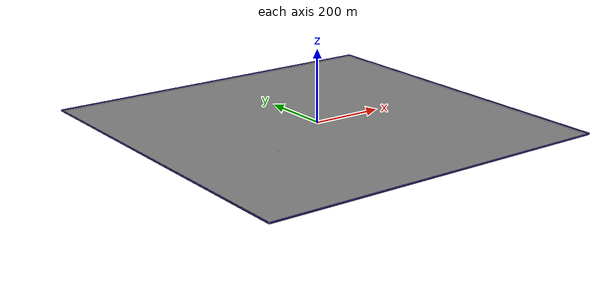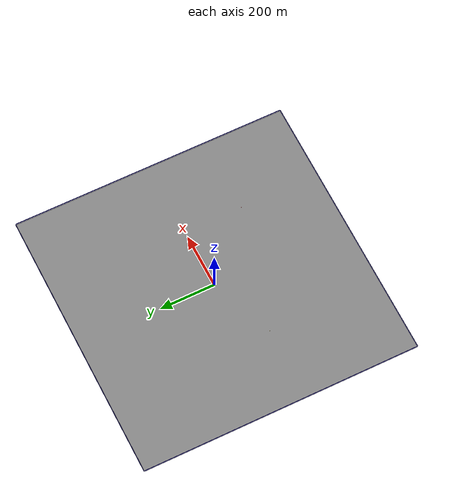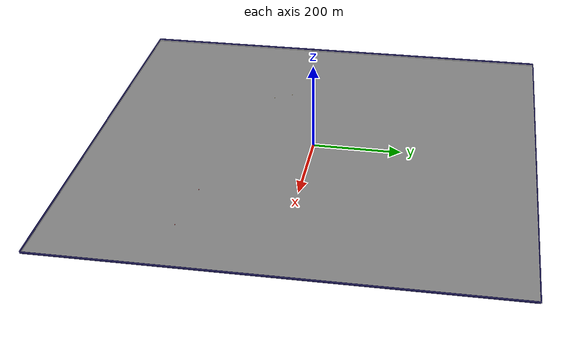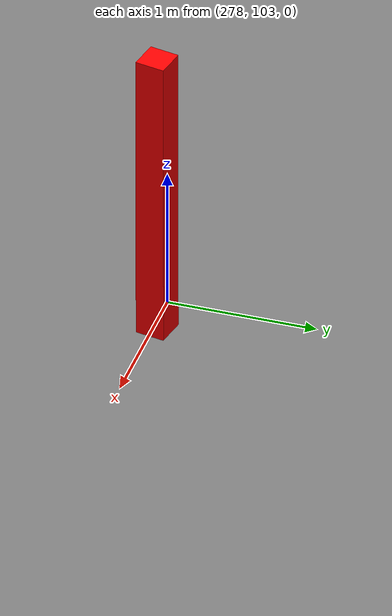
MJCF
<mujoco model="unnamed_model">
  <default>
    <default class="/" />
    <default class="border/" />
    <default class="border_1/" />
    <default class="border_2/" />
    <default class="border_3/" />
    <default class="agentplaceholder/" />
    <default class="placeholder_box/" />
    <default class="tree0/" />
    <default class="tree1/" />
    <default class="stone/" />
    <default class="stone_1/" />
  </default>
  <worldbody>
    <body name="border/">
      <body name="border/border" pos="0 501 2">
        <geom name="border/border_geom" class="border/" type="box" size="500 1 2" rgba="0.035000000000000003 0.016 0.28999999999999998 1" />
      </body>
    </body>
    <body name="border_1/">
      <body name="border_1/border" pos="0 -501 2">
        <geom name="border_1/border_geom" class="border_1/" type="box" size="500 1 2" rgba="0.035000000000000003 0.016 0.28999999999999998 1" />
      </body>
    </body>
    <body name="border_2/">
      <body name="border_2/border" pos="501 0 2">
        <geom name="border_2/border_geom" class="border_2/" type="box" size="1 500 2" rgba="0.035000000000000003 0.016 0.28999999999999998 1" />
      </body>
    </body>
    <body name="border_3/">
      <body name="border_3/border" pos="-501 0 2">
        <geom name="border_3/border_geom" class="border_3/" type="box" size="1 500 2" rgba="0.035000000000000003 0.016 0.28999999999999998 1" />
      </body>
    </body>
    <body euler="0 0 20.911319885720445" name="agentplaceholder/">
      <joint name="agentplaceholder/boxagent_freeJoint/" class="/" type="free" />
      <body name="agentplaceholder/agentplaceholder" pos="-250 0 3" euler="0 0 0">
        <geom name="agentplaceholder/boxagent_geom" class="agentplaceholder/" type="box" size="0.5 0.5 0.5" rgba="0.94899999999999995 0.74509999999999998 0.1333 1" euler="0 0 0" />
      </body>
    </body>
    <body name="placeholder_box/">
      <body name="placeholder_box/placeholder_box" pos="-215.35525000000001 -129.52210000000002 0.5" euler="0 0 57.727149526529274">
        <geom name="placeholder_box/box_geom" class="placeholder_box/" type="box" size="0.5 0.5 0.5" rgba="0.94899999999999995 0.74509999999999998 0.1333 1" euler="0 0 0" />
      </body>
    </body>
    <body name="tree0/">
      <body name="tree0/tree0" pos="358.40805 -227.34109999999998 0.10000000000000001" euler="0 0 73.679421577769773">
        <geom name="tree0/tree_geom" class="tree0/" type="box" size="0.10000000000000001 0.10000000000000001 2" rgba="1 0 0 1" />
      </body>
    </body>
    <body name="tree1/">
      <body name="tree1/tree1" pos="221.88995 -211.82349999999997 0.10000000000000001" euler="0 0 172.98591221243549">
        <geom name="tree1/tree_geom" class="tree1/" type="box" size="0.10000000000000001 0.10000000000000001 2" rgba="1 0 0 1" />
      </body>
    </body>
    <body name="stone/">
      <body name="stone/stone" pos="354.04174999999998 -282.42110000000002 0.10000000000000001" euler="0 0 156.19095017452753">
        <geom name="stone/stone_geom" class="stone/" type="box" size="0.10000000000000001 0.10000000000000001 2" rgba="1 0 0 1" />
      </body>
    </body>
    <body name="stone_1/">
      <body name="stone_1/stone" pos="278.29005000000001 103.02340000000004 0.10000000000000001" euler="0 0 168.95790920555083">
        <geom name="stone_1/stone_geom" class="stone_1/" type="box" size="0.10000000000000001 0.10000000000000001 2" rgba="1 0 0 1" />
      </body>
    </body>
    <geom name="base_plane" class="/" type="plane" size="500 500 0.10000000000000001" />
  </worldbody>
</mujoco>
